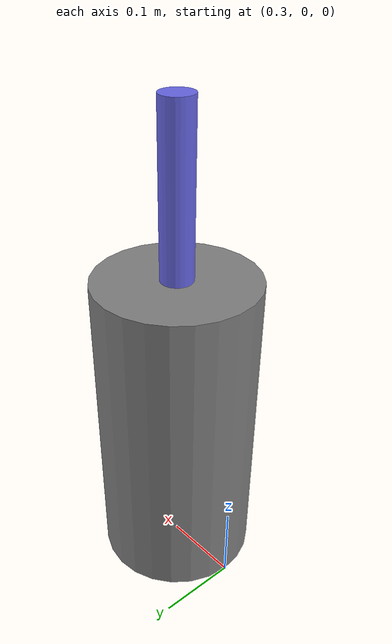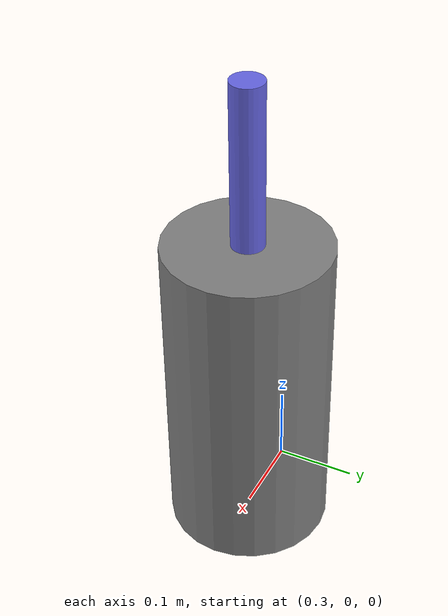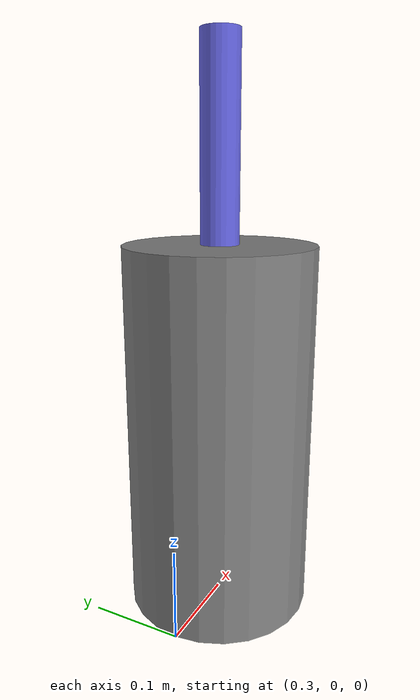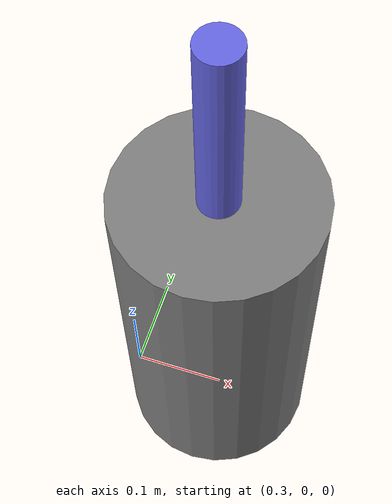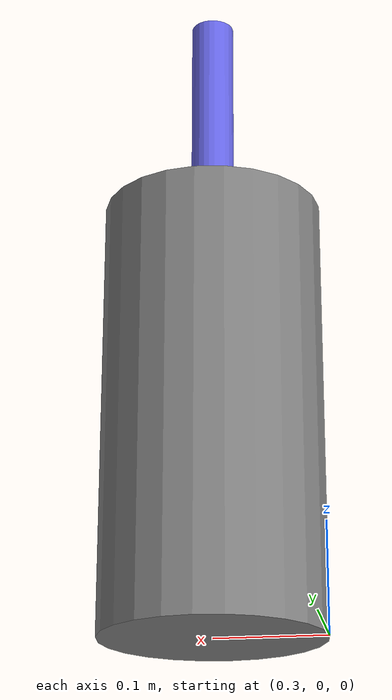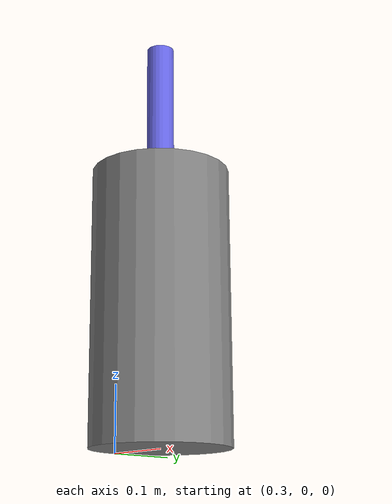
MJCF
<mujoco model="bottle">
  <worldbody>
    <body name="bottle" pos="0.4 0 0">
      <freejoint/>
      <inertial pos="0 0 0.3" mass="0.5" diaginertia="0.01 0.01 0.01"/>
      <geom name="bottle_body" type="cylinder" size="0.1 0.2" pos="0 0 0.2" contype="1" conaffinity="1"/>
      <geom name="bottle_neck" type="cylinder" size="0.02 0.1" pos="0 0 0.5" rgba="0.4 0.4 0.9 1" contype="1" conaffinity="1"/>
    </body>
  </worldbody>
</mujoco>
